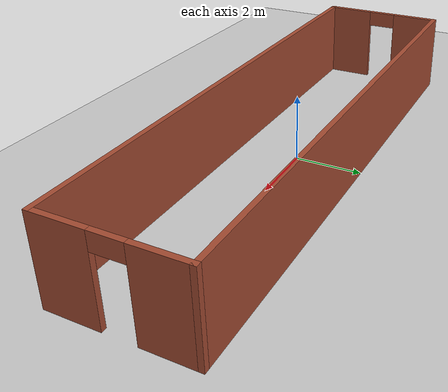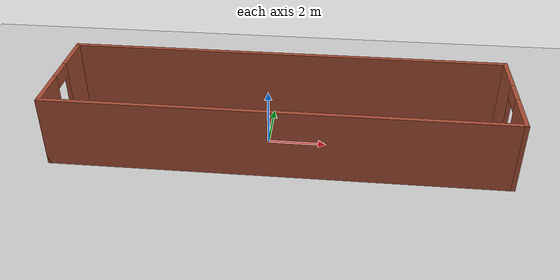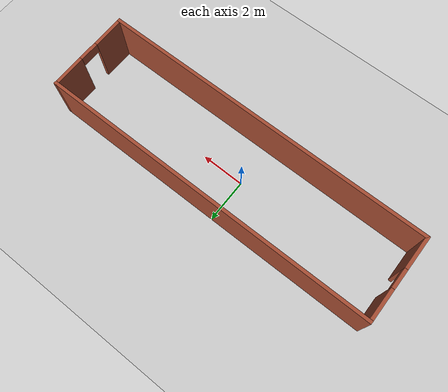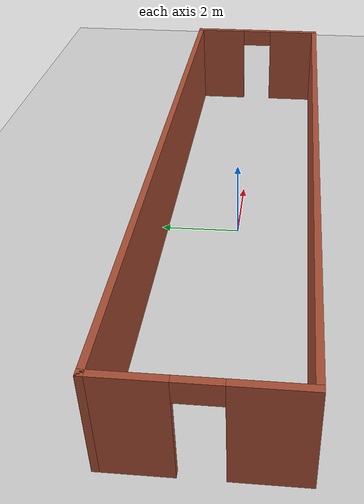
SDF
<sdf version="1.6">
 <world name="default">
  <model name="ground_plane">
   <static>1</static>
   <link name="link">
    <collision name="collision">
     <geometry><plane><normal>0 0 1</normal><size>100 100</size></plane></geometry>
     <surface>
      <contact><collide_bitmask>65535</collide_bitmask></contact>
      <friction><ode><mu>100</mu><mu2>50</mu2></ode></friction>
     </surface>
    </collision>
    <visual name="visual">
     <cast_shadows>0</cast_shadows>
     <geometry><plane><normal>0 0 1</normal><size>100 100</size></plane></geometry>
     <material>
      <script><uri>file://media/materials/scripts/gazebo.material</uri><name>Gazebo/Grey</name></script>
     </material>
    </visual>
   </link>
  </model>
  <model name="Hallway">
   <link name="Wall_5">
    <pose>0 -1.925 0 0 -0 0</pose>
    <inertial>
     <mass>1</mass>
     <inertia><ixx>1</ixx><ixy>0</ixy><ixz>0</ixz><iyy>1</iyy><iyz>0</iyz><izz>1</izz></inertia>
    </inertial>
    <visual name="Wall_5_Visual">
     <pose>0 0 1.25 0 -0 0</pose>
     <geometry><box><size>15.5 0.15 2.5</size></box></geometry>
     <material>
      <script><uri>file://media/materials/scripts/gazebo.material</uri><name>Gazebo/Bricks</name></script>
      <ambient>0 0 1 1</ambient>
      <shader type="pixel"><normal_map>__default__</normal_map></shader>
      <diffuse>1 1 1 1</diffuse>
      <specular>0.2 0.2 0.2 1</specular>
      <emissive>0 0 0 1</emissive>
     </material>
     <meta><layer>0</layer></meta>
    </visual>
    <collision name="Wall_5_Collision">
     <pose>0 0 1.25 0 -0 0</pose>
     <geometry><box><size>15.5 0.15 2.5</size></box></geometry>
     <surface>
      <friction>
       <ode><mu>1</mu><mu2>1</mu2><fdir1>0 0 0</fdir1><slip1>0</slip1><slip2>0</slip2></ode>
       <torsional>
        <coefficient>1</coefficient>
        <patch_radius>0</patch_radius>
        <surface_radius>0</surface_radius>
        <use_patch_radius>1</use_patch_radius>
        <ode><slip>0</slip></ode>
       </torsional>
      </friction>
      <bounce><restitution_coefficient>0</restitution_coefficient><threshold>1e+06</threshold></bounce>
      <contact>
       <collide_without_contact>0</collide_without_contact>
       <collide_without_contact_bitmask>1</collide_without_contact_bitmask>
       <collide_bitmask>1</collide_bitmask>
       <ode>
        <soft_cfm>0</soft_cfm>
        <soft_erp>0.2</soft_erp>
        <kp>1e+13</kp>
        <kd>1</kd>
        <max_vel>0.01</max_vel>
        <min_depth>0</min_depth>
       </ode>
       <bullet>
        <split_impulse>1</split_impulse>
        <split_impulse_penetration_threshold>-0.01</split_impulse_penetration_threshold>
        <soft_cfm>0</soft_cfm>
        <soft_erp>0.2</soft_erp>
        <kp>1e+13</kp>
        <kd>1</kd>
       </bullet>
      </contact>
     </surface>
    </collision>
   </link>
   <link name="Wall_6">
    <pose>7.675 0 0 0 -0 1.5708</pose>
    <inertial>
     <mass>1</mass>
     <inertia><ixx>1</ixx><ixy>0</ixy><ixz>0</ixz><iyy>1</iyy><iyz>0</iyz><izz>1</izz></inertia>
    </inertial>
    <visual name="Wall_6_Visual_0">
     <pose>-1.22208 0 1.25 0 -0 0</pose>
     <geometry><box><size>1.55585 0.15 2.5</size></box></geometry>
     <material>
      <script><uri>file://media/materials/scripts/gazebo.material</uri><name>Gazebo/Bricks</name></script>
      <ambient>0 0 1 1</ambient>
      <shader type="pixel"><normal_map>__default__</normal_map></shader>
      <diffuse>1 1 1 1</diffuse>
      <specular>0.2 0.2 0.2 1</specular>
      <emissive>0 0 0 1</emissive>
     </material>
     <meta><layer>0</layer></meta>
    </visual>
    <visual name="Wall_6_Visual_1">
     <pose>1.22792 0 1.25 0 -0 0</pose>
     <geometry><box><size>1.54415 0.15 2.5</size></box></geometry>
     <material>
      <script><uri>file://media/materials/scripts/gazebo.material</uri><name>Gazebo/Bricks</name></script>
      <ambient>0 0 1 1</ambient>
      <shader type="pixel"><normal_map>__default__</normal_map></shader>
      <diffuse>1 1 1 1</diffuse>
      <specular>0.2 0.2 0.2 1</specular>
      <emissive>0 0 0 1</emissive>
     </material>
     <meta><layer>0</layer></meta>
    </visual>
    <visual name="Wall_6_Visual_2">
     <pose>0.00585 0 2.25 0 -0 0</pose>
     <geometry><box><size>0.9 0.15 0.5</size></box></geometry>
     <material>
      <script><uri>file://media/materials/scripts/gazebo.material</uri><name>Gazebo/Bricks</name></script>
      <ambient>0 0 1 1</ambient>
      <shader type="pixel"><normal_map>__default__</normal_map></shader>
      <diffuse>1 1 1 1</diffuse>
      <specular>0.2 0.2 0.2 1</specular>
      <emissive>0 0 0 1</emissive>
     </material>
     <meta><layer>0</layer></meta>
    </visual>
    <collision name="Wall_6_Collision_0">
     <pose>-1.22208 0 1.25 0 -0 0</pose>
     <geometry><box><size>1.55585 0.15 2.5</size></box></geometry>
     <surface>
      <friction>
       <ode><mu>1</mu><mu2>1</mu2><fdir1>0 0 0</fdir1><slip1>0</slip1><slip2>0</slip2></ode>
       <torsional>
        <coefficient>1</coefficient>
        <patch_radius>0</patch_radius>
        <surface_radius>0</surface_radius>
        <use_patch_radius>1</use_patch_radius>
        <ode><slip>0</slip></ode>
       </torsional>
      </friction>
      <bounce><restitution_coefficient>0</restitution_coefficient><threshold>1e+06</threshold></bounce>
      <contact>
       <collide_without_contact>0</collide_without_contact>
       <collide_without_contact_bitmask>1</collide_without_contact_bitmask>
       <collide_bitmask>1</collide_bitmask>
       <ode>
        <soft_cfm>0</soft_cfm>
        <soft_erp>0.2</soft_erp>
        <kp>1e+13</kp>
        <kd>1</kd>
        <max_vel>0.01</max_vel>
        <min_depth>0</min_depth>
       </ode>
       <bullet>
        <split_impulse>1</split_impulse>
        <split_impulse_penetration_threshold>-0.01</split_impulse_penetration_threshold>
        <soft_cfm>0</soft_cfm>
        <soft_erp>0.2</soft_erp>
        <kp>1e+13</kp>
        <kd>1</kd>
       </bullet>
      </contact>
     </surface>
    </collision>
    <collision name="Wall_6_Collision_1">
     <pose>1.22792 0 1.25 0 -0 0</pose>
     <geometry><box><size>1.54415 0.15 2.5</size></box></geometry>
     <surface>
      <friction>
       <ode><mu>1</mu><mu2>1</mu2><fdir1>0 0 0</fdir1><slip1>0</slip1><slip2>0</slip2></ode>
       <torsional>
        <coefficient>1</coefficient>
        <patch_radius>0</patch_radius>
        <surface_radius>0</surface_radius>
        <use_patch_radius>1</use_patch_radius>
        <ode><slip>0</slip></ode>
       </torsional>
      </friction>
      <bounce><restitution_coefficient>0</restitution_coefficient><threshold>1e+06</threshold></bounce>
      <contact>
       <collide_without_contact>0</collide_without_contact>
       <collide_without_contact_bitmask>1</collide_without_contact_bitmask>
       <collide_bitmask>1</collide_bitmask>
       <ode>
        <soft_cfm>0</soft_cfm>
        <soft_erp>0.2</soft_erp>
        <kp>1e+13</kp>
        <kd>1</kd>
        <max_vel>0.01</max_vel>
        <min_depth>0</min_depth>
       </ode>
       <bullet>
        <split_impulse>1</split_impulse>
        <split_impulse_penetration_threshold>-0.01</split_impulse_penetration_threshold>
        <soft_cfm>0</soft_cfm>
        <soft_erp>0.2</soft_erp>
        <kp>1e+13</kp>
        <kd>1</kd>
       </bullet>
      </contact>
     </surface>
    </collision>
    <collision name="Wall_6_Collision_2">
     <pose>0.00585 0 2.25 0 -0 0</pose>
     <geometry><box><size>0.9 0.15 0.5</size></box></geometry>
     <surface>
      <friction>
       <ode><mu>1</mu><mu2>1</mu2><fdir1>0 0 0</fdir1><slip1>0</slip1><slip2>0</slip2></ode>
       <torsional>
        <coefficient>1</coefficient>
        <patch_radius>0</patch_radius>
        <surface_radius>0</surface_radius>
        <use_patch_radius>1</use_patch_radius>
        <ode><slip>0</slip></ode>
       </torsional>
      </friction>
      <bounce><restitution_coefficient>0</restitution_coefficient><threshold>1e+06</threshold></bounce>
      <contact>
       <collide_without_contact>0</collide_without_contact>
       <collide_without_contact_bitmask>1</collide_without_contact_bitmask>
       <collide_bitmask>1</collide_bitmask>
       <ode>
        <soft_cfm>0</soft_cfm>
        <soft_erp>0.2</soft_erp>
        <kp>1e+13</kp>
        <kd>1</kd>
        <max_vel>0.01</max_vel>
        <min_depth>0</min_depth>
       </ode>
       <bullet>
        <split_impulse>1</split_impulse>
        <split_impulse_penetration_threshold>-0.01</split_impulse_penetration_threshold>
        <soft_cfm>0</soft_cfm>
        <soft_erp>0.2</soft_erp>
        <kp>1e+13</kp>
        <kd>1</kd>
       </bullet>
      </contact>
     </surface>
    </collision>
   </link>
   <link name="Wall_7">
    <pose>0 1.925 0 0 -0 3.14159</pose>
    <inertial>
     <mass>1</mass>
     <inertia><ixx>1</ixx><ixy>0</ixy><ixz>0</ixz><iyy>1</iyy><iyz>0</iyz><izz>1</izz></inertia>
    </inertial>
    <visual name="Wall_7_Visual">
     <pose>0 0 1.25 0 -0 0</pose>
     <geometry><box><size>15.5 0.15 2.5</size></box></geometry>
     <material>
      <script><uri>file://media/materials/scripts/gazebo.material</uri><name>Gazebo/Bricks</name></script>
      <ambient>0 0 1 1</ambient>
      <shader type="pixel"><normal_map>__default__</normal_map></shader>
      <diffuse>1 1 1 1</diffuse>
      <specular>0.2 0.2 0.2 1</specular>
      <emissive>0 0 0 1</emissive>
     </material>
     <meta><layer>0</layer></meta>
    </visual>
    <collision name="Wall_7_Collision">
     <pose>0 0 1.25 0 -0 0</pose>
     <geometry><box><size>15.5 0.15 2.5</size></box></geometry>
     <surface>
      <friction>
       <ode><mu>1</mu><mu2>1</mu2><fdir1>0 0 0</fdir1><slip1>0</slip1><slip2>0</slip2></ode>
       <torsional>
        <coefficient>1</coefficient>
        <patch_radius>0</patch_radius>
        <surface_radius>0</surface_radius>
        <use_patch_radius>1</use_patch_radius>
        <ode><slip>0</slip></ode>
       </torsional>
      </friction>
      <bounce><restitution_coefficient>0</restitution_coefficient><threshold>1e+06</threshold></bounce>
      <contact>
       <collide_without_contact>0</collide_without_contact>
       <collide_without_contact_bitmask>1</collide_without_contact_bitmask>
       <collide_bitmask>1</collide_bitmask>
       <ode>
        <soft_cfm>0</soft_cfm>
        <soft_erp>0.2</soft_erp>
        <kp>1e+13</kp>
        <kd>1</kd>
        <max_vel>0.01</max_vel>
        <min_depth>0</min_depth>
       </ode>
       <bullet>
        <split_impulse>1</split_impulse>
        <split_impulse_penetration_threshold>-0.01</split_impulse_penetration_threshold>
        <soft_cfm>0</soft_cfm>
        <soft_erp>0.2</soft_erp>
        <kp>1e+13</kp>
        <kd>1</kd>
       </bullet>
      </contact>
     </surface>
    </collision>
   </link>
   <link name="Wall_8">
    <pose>-7.675 0 0 0 0 -1.5708</pose>
    <inertial>
     <mass>1</mass>
     <inertia><ixx>1</ixx><ixy>0</ixy><ixz>0</ixz><iyy>1</iyy><iyz>0</iyz><izz>1</izz></inertia>
    </inertial>
    <visual name="Wall_8_Visual_1">
     <pose>1.21764 0 1.25 0 -0 0</pose>
     <geometry><box><size>1.56472 0.15 2.5</size></box></geometry>
     <material>
      <script><uri>file://media/materials/scripts/gazebo.material</uri><name>Gazebo/Bricks</name></script>
      <ambient>0 0 1 1</ambient>
      <shader type="pixel"><normal_map>__default__</normal_map></shader>
      <diffuse>1 1 1 1</diffuse>
      <specular>0.2 0.2 0.2 1</specular>
      <emissive>0 0 0 1</emissive>
     </material>
     <meta><layer>0</layer></meta>
    </visual>
    <visual name="Wall_8_Visual_0">
     <pose>-1.23236 0 1.25 0 -0 0</pose>
     <geometry><box><size>1.53528 0.15 2.5</size></box></geometry>
     <material>
      <script><uri>file://media/materials/scripts/gazebo.material</uri><name>Gazebo/Bricks</name></script>
      <ambient>0 0 1 1</ambient>
      <shader type="pixel"><normal_map>__default__</normal_map></shader>
      <diffuse>1 1 1 1</diffuse>
      <specular>0.2 0.2 0.2 1</specular>
      <emissive>0 0 0 1</emissive>
     </material>
     <meta><layer>0</layer></meta>
    </visual>
    <visual name="Wall_8_Visual_2">
     <pose>-0.01472 0 2.25 0 -0 0</pose>
     <geometry><box><size>0.9 0.15 0.5</size></box></geometry>
     <material>
      <script><uri>file://media/materials/scripts/gazebo.material</uri><name>Gazebo/Bricks</name></script>
      <ambient>0 0 1 1</ambient>
      <shader type="pixel"><normal_map>__default__</normal_map></shader>
      <diffuse>1 1 1 1</diffuse>
      <specular>0.2 0.2 0.2 1</specular>
      <emissive>0 0 0 1</emissive>
     </material>
     <meta><layer>0</layer></meta>
    </visual>
    <collision name="Wall_8_Collision_0">
     <pose>-1.23236 0 1.25 0 -0 0</pose>
     <geometry><box><size>1.53528 0.15 2.5</size></box></geometry>
     <surface>
      <friction>
       <ode><mu>1</mu><mu2>1</mu2><fdir1>0 0 0</fdir1><slip1>0</slip1><slip2>0</slip2></ode>
       <torsional>
        <coefficient>1</coefficient>
        <patch_radius>0</patch_radius>
        <surface_radius>0</surface_radius>
        <use_patch_radius>1</use_patch_radius>
        <ode><slip>0</slip></ode>
       </torsional>
      </friction>
      <bounce><restitution_coefficient>0</restitution_coefficient><threshold>1e+06</threshold></bounce>
      <contact>
       <collide_without_contact>0</collide_without_contact>
       <collide_without_contact_bitmask>1</collide_without_contact_bitmask>
       <collide_bitmask>1</collide_bitmask>
       <ode>
        <soft_cfm>0</soft_cfm>
        <soft_erp>0.2</soft_erp>
        <kp>1e+13</kp>
        <kd>1</kd>
        <max_vel>0.01</max_vel>
        <min_depth>0</min_depth>
       </ode>
       <bullet>
        <split_impulse>1</split_impulse>
        <split_impulse_penetration_threshold>-0.01</split_impulse_penetration_threshold>
        <soft_cfm>0</soft_cfm>
        <soft_erp>0.2</soft_erp>
        <kp>1e+13</kp>
        <kd>1</kd>
       </bullet>
      </contact>
     </surface>
    </collision>
    <collision name="Wall_8_Collision_1">
     <pose>1.21764 0 1.25 0 -0 0</pose>
     <geometry><box><size>1.56472 0.15 2.5</size></box></geometry>
     <surface>
      <friction>
       <ode><mu>1</mu><mu2>1</mu2><fdir1>0 0 0</fdir1><slip1>0</slip1><slip2>0</slip2></ode>
       <torsional>
        <coefficient>1</coefficient>
        <patch_radius>0</patch_radius>
        <surface_radius>0</surface_radius>
        <use_patch_radius>1</use_patch_radius>
        <ode><slip>0</slip></ode>
       </torsional>
      </friction>
      <bounce><restitution_coefficient>0</restitution_coefficient><threshold>1e+06</threshold></bounce>
      <contact>
       <collide_without_contact>0</collide_without_contact>
       <collide_without_contact_bitmask>1</collide_without_contact_bitmask>
       <collide_bitmask>1</collide_bitmask>
       <ode>
        <soft_cfm>0</soft_cfm>
        <soft_erp>0.2</soft_erp>
        <kp>1e+13</kp>
        <kd>1</kd>
        <max_vel>0.01</max_vel>
        <min_depth>0</min_depth>
       </ode>
       <bullet>
        <split_impulse>1</split_impulse>
        <split_impulse_penetration_threshold>-0.01</split_impulse_penetration_threshold>
        <soft_cfm>0</soft_cfm>
        <soft_erp>0.2</soft_erp>
        <kp>1e+13</kp>
        <kd>1</kd>
       </bullet>
      </contact>
     </surface>
    </collision>
    <collision name="Wall_8_Collision_2">
     <pose>-0.01472 0 2.25 0 -0 0</pose>
     <geometry><box><size>0.9 0.15 0.5</size></box></geometry>
     <surface>
      <friction>
       <ode><mu>1</mu><mu2>1</mu2><fdir1>0 0 0</fdir1><slip1>0</slip1><slip2>0</slip2></ode>
       <torsional>
        <coefficient>1</coefficient>
        <patch_radius>0</patch_radius>
        <surface_radius>0</surface_radius>
        <use_patch_radius>1</use_patch_radius>
        <ode><slip>0</slip></ode>
       </torsional>
      </friction>
      <bounce><restitution_coefficient>0</restitution_coefficient><threshold>1e+06</threshold></bounce>
      <contact>
       <collide_without_contact>0</collide_without_contact>
       <collide_without_contact_bitmask>1</collide_without_contact_bitmask>
       <collide_bitmask>1</collide_bitmask>
       <ode>
        <soft_cfm>0</soft_cfm>
        <soft_erp>0.2</soft_erp>
        <kp>1e+13</kp>
        <kd>1</kd>
        <max_vel>0.01</max_vel>
        <min_depth>0</min_depth>
       </ode>
       <bullet>
        <split_impulse>1</split_impulse>
        <split_impulse_penetration_threshold>-0.01</split_impulse_penetration_threshold>
        <soft_cfm>0</soft_cfm>
        <soft_erp>0.2</soft_erp>
        <kp>1e+13</kp>
        <kd>1</kd>
       </bullet>
      </contact>
     </surface>
    </collision>
   </link>
   <static>1</static>
   <pose>0.438343 0.0128 0 0 -0 0</pose>
  </model>
 </world>
</sdf>
